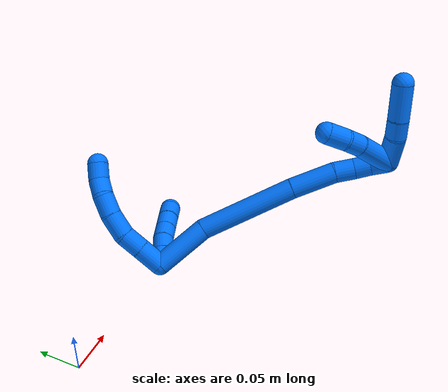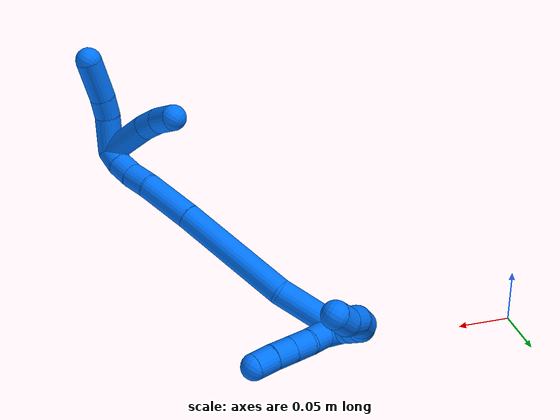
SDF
<sdf version="1.7">
 <world name="default">
  <model name="14">
   <static>0</static>
   <link name="14">
    <collision name="collision-cylinder-e_1_2_8">
     <pose>-0.010591 0.010419 -0.00333 -1.88014 -0.769293 1.01237</pose>
     <geometry><cylinder><radius>0.0125</radius><length>0.03045</length></cylinder></geometry>
     <surface>
      <friction><ode><mu>1.16</mu><mu2>1.16</mu2><slip1>0</slip1><slip2>0</slip2></ode></friction>
      <contact><ode><kp>1e+06</kp><kd>1</kd><max_vel>0</max_vel><min_depth>0.001</min_depth></ode></contact>
     </surface>
    </collision>
    <visual name="visual-cylinder-e_1_2_8">
     <pose>-0.010591 0.010419 -0.00333 -1.88014 -0.769293 1.01237</pose>
     <geometry><cylinder><radius>0.0125</radius><length>0.03045</length></cylinder></geometry>
     <material><ambient>0 0.462745 1 1</ambient></material>
    </visual>
    <collision name="collision-cylinder-e_2_8_9">
     <pose>-0.030024 0.029293 -0.009438 -1.88833 -0.782093 1.03533</pose>
     <geometry><cylinder><radius>0.0125</radius><length>0.025091</length></cylinder></geometry>
     <surface>
      <friction><ode><mu>1.16</mu><mu2>1.16</mu2><slip1>0</slip1><slip2>0</slip2></ode></friction>
      <contact><ode><kp>1e+06</kp><kd>1</kd><max_vel>0</max_vel><min_depth>0.001</min_depth></ode></contact>
     </surface>
    </collision>
    <visual name="visual-cylinder-e_2_8_9">
     <pose>-0.030024 0.029293 -0.009438 -1.88833 -0.782093 1.03533</pose>
     <geometry><cylinder><radius>0.0125</radius><length>0.025091</length></cylinder></geometry>
     <material><ambient>0 0.462745 1 1</ambient></material>
    </visual>
    <collision name="collision-cylinder-e_3_9_10">
     <pose>-0.048047 0.048391 -0.011154 -1.47123 -0.709357 0.646834</pose>
     <geometry><cylinder><radius>0.0125</radius><length>0.028193</length></cylinder></geometry>
     <surface>
      <friction><ode><mu>1.16</mu><mu2>1.16</mu2><slip1>0</slip1><slip2>0</slip2></ode></friction>
      <contact><ode><kp>1e+06</kp><kd>1</kd><max_vel>0</max_vel><min_depth>0.001</min_depth></ode></contact>
     </surface>
    </collision>
    <visual name="visual-cylinder-e_3_9_10">
     <pose>-0.048047 0.048391 -0.011154 -1.47123 -0.709357 0.646834</pose>
     <geometry><cylinder><radius>0.0125</radius><length>0.028193</length></cylinder></geometry>
     <material><ambient>0 0.462745 1 1</ambient></material>
    </visual>
    <collision name="collision-cylinder-e_4_10_11">
     <pose>-0.064435 0.068849 -0.006865 -1.25322 -0.60905 0.44745</pose>
     <geometry><cylinder><radius>0.0125</radius><length>0.025192</length></cylinder></geometry>
     <surface>
      <friction><ode><mu>1.16</mu><mu2>1.16</mu2><slip1>0</slip1><slip2>0</slip2></ode></friction>
      <contact><ode><kp>1e+06</kp><kd>1</kd><max_vel>0</max_vel><min_depth>0.001</min_depth></ode></contact>
     </surface>
    </collision>
    <visual name="visual-cylinder-e_4_10_11">
     <pose>-0.064435 0.068849 -0.006865 -1.25322 -0.60905 0.44745</pose>
     <geometry><cylinder><radius>0.0125</radius><length>0.025192</length></cylinder></geometry>
     <material><ambient>0 0.462745 1 1</ambient></material>
    </visual>
    <collision name="collision-cylinder-e_5_11_12">
     <pose>-0.07449 0.087988 -0.000216 -1.21897 -0.279301 0.195645</pose>
     <geometry><cylinder><radius>0.0125</radius><length>0.020666</length></cylinder></geometry>
     <surface>
      <friction><ode><mu>1.16</mu><mu2>1.16</mu2><slip1>0</slip1><slip2>0</slip2></ode></friction>
      <contact><ode><kp>1e+06</kp><kd>1</kd><max_vel>0</max_vel><min_depth>0.001</min_depth></ode></contact>
     </surface>
    </collision>
    <visual name="visual-cylinder-e_5_11_12">
     <pose>-0.07449 0.087988 -0.000216 -1.21897 -0.279301 0.195645</pose>
     <geometry><cylinder><radius>0.0125</radius><length>0.020666</length></cylinder></geometry>
     <material><ambient>0 0.462745 1 1</ambient></material>
    </visual>
    <collision name="collision-cylinder-e_6_12_6">
     <pose>-0.082106 0.104492 0.008669 -0.920522 -0.48618 0.24467</pose>
     <geometry><cylinder><radius>0.0125</radius><length>0.020407</length></cylinder></geometry>
     <surface>
      <friction><ode><mu>1.16</mu><mu2>1.16</mu2><slip1>0</slip1><slip2>0</slip2></ode></friction>
      <contact><ode><kp>1e+06</kp><kd>1</kd><max_vel>0</max_vel><min_depth>0.001</min_depth></ode></contact>
     </surface>
    </collision>
    <visual name="visual-cylinder-e_6_12_6">
     <pose>-0.082106 0.104492 0.008669 -0.920522 -0.48618 0.24467</pose>
     <geometry><cylinder><radius>0.0125</radius><length>0.020407</length></cylinder></geometry>
     <material><ambient>0 0.462745 1 1</ambient></material>
    </visual>
    <collision name="collision-cylinder-e_1_2_13">
     <pose>0.001828 0.00767 0.006151 -0.894827 0.183848 -0.088415</pose>
     <geometry><cylinder><radius>0.0125</radius><length>0.02</length></cylinder></geometry>
     <surface>
      <friction><ode><mu>1.16</mu><mu2>1.16</mu2><slip1>0</slip1><slip2>0</slip2></ode></friction>
      <contact><ode><kp>1e+06</kp><kd>1</kd><max_vel>0</max_vel><min_depth>0.001</min_depth></ode></contact>
     </surface>
    </collision>
    <visual name="visual-cylinder-e_1_2_13">
     <pose>0.001828 0.00767 0.006151 -0.894827 0.183848 -0.088415</pose>
     <geometry><cylinder><radius>0.0125</radius><length>0.02</length></cylinder></geometry>
     <material><ambient>0 0.462745 1 1</ambient></material>
    </visual>
    <collision name="collision-cylinder-e_2_13_14">
     <pose>0.004942 0.024448 0.016223 -1.16432 0.128976 -0.084966</pose>
     <geometry><cylinder><radius>0.0125</radius><length>0.02</length></cylinder></geometry>
     <surface>
      <friction><ode><mu>1.16</mu><mu2>1.16</mu2><slip1>0</slip1><slip2>0</slip2></ode></friction>
      <contact><ode><kp>1e+06</kp><kd>1</kd><max_vel>0</max_vel><min_depth>0.001</min_depth></ode></contact>
     </surface>
    </collision>
    <visual name="visual-cylinder-e_2_13_14">
     <pose>0.004942 0.024448 0.016223 -1.16432 0.128976 -0.084966</pose>
     <geometry><cylinder><radius>0.0125</radius><length>0.02</length></cylinder></geometry>
     <material><ambient>0 0.462745 1 1</ambient></material>
    </visual>
    <collision name="collision-cylinder-e_3_14_15">
     <pose>0.009079 0.041686 0.025223 -1.01231 0.289 -0.160974</pose>
     <geometry><cylinder><radius>0.0125</radius><length>0.02</length></cylinder></geometry>
     <surface>
      <friction><ode><mu>1.16</mu><mu2>1.16</mu2><slip1>0</slip1><slip2>0</slip2></ode></friction>
      <contact><ode><kp>1e+06</kp><kd>1</kd><max_vel>0</max_vel><min_depth>0.001</min_depth></ode></contact>
     </surface>
    </collision>
    <visual name="visual-cylinder-e_3_14_15">
     <pose>0.009079 0.041686 0.025223 -1.01231 0.289 -0.160974</pose>
     <geometry><cylinder><radius>0.0125</radius><length>0.02</length></cylinder></geometry>
     <material><ambient>0 0.462745 1 1</ambient></material>
    </visual>
    <collision name="collision-cylinder-e_4_15_16">
     <pose>0.014718 0.057936 0.035427 -1.00788 0.282691 -0.156609</pose>
     <geometry><cylinder><radius>0.0125</radius><length>0.02</length></cylinder></geometry>
     <surface>
      <friction><ode><mu>1.16</mu><mu2>1.16</mu2><slip1>0</slip1><slip2>0</slip2></ode></friction>
      <contact><ode><kp>1e+06</kp><kd>1</kd><max_vel>0</max_vel><min_depth>0.001</min_depth></ode></contact>
     </surface>
    </collision>
    <visual name="visual-cylinder-e_4_15_16">
     <pose>0.014718 0.057936 0.035427 -1.00788 0.282691 -0.156609</pose>
     <geometry><cylinder><radius>0.0125</radius><length>0.02</length></cylinder></geometry>
     <material><ambient>0 0.462745 1 1</ambient></material>
    </visual>
    <collision name="collision-cylinder-e_5_16_5">
     <pose>0.020919 0.074161 0.045316 -1.03937 0.348112 -0.200531</pose>
     <geometry><cylinder><radius>0.0125</radius><length>0.02</length></cylinder></geometry>
     <surface>
      <friction><ode><mu>1.16</mu><mu2>1.16</mu2><slip1>0</slip1><slip2>0</slip2></ode></friction>
      <contact><ode><kp>1e+06</kp><kd>1</kd><max_vel>0</max_vel><min_depth>0.001</min_depth></ode></contact>
     </surface>
    </collision>
    <visual name="visual-cylinder-e_5_16_5">
     <pose>0.020919 0.074161 0.045316 -1.03937 0.348112 -0.200531</pose>
     <geometry><cylinder><radius>0.0125</radius><length>0.02</length></cylinder></geometry>
     <material><ambient>0 0.462745 1 1</ambient></material>
    </visual>
    <collision name="collision-cylinder-e_1_2_17">
     <pose>-0.00103 0.000835 0.03343 -0.024969 -0.030798 0.000385</pose>
     <geometry><cylinder><radius>0.0125</radius><length>0.066913</length></cylinder></geometry>
     <surface>
      <friction><ode><mu>1.16</mu><mu2>1.16</mu2><slip1>0</slip1><slip2>0</slip2></ode></friction>
      <contact><ode><kp>1e+06</kp><kd>1</kd><max_vel>0</max_vel><min_depth>0.001</min_depth></ode></contact>
     </surface>
    </collision>
    <visual name="visual-cylinder-e_1_2_17">
     <pose>-0.00103 0.000835 0.03343 -0.024969 -0.030798 0.000385</pose>
     <geometry><cylinder><radius>0.0125</radius><length>0.066913</length></cylinder></geometry>
     <material><ambient>0 0.462745 1 1</ambient></material>
    </visual>
    <collision name="collision-cylinder-e_2_17_18">
     <pose>-0.000854 -0.013774 0.122941 0.268719 0.020734 0.002803</pose>
     <geometry><cylinder><radius>0.0125</radius><length>0.116362</length></cylinder></geometry>
     <surface>
      <friction><ode><mu>1.16</mu><mu2>1.16</mu2><slip1>0</slip1><slip2>0</slip2></ode></friction>
      <contact><ode><kp>1e+06</kp><kd>1</kd><max_vel>0</max_vel><min_depth>0.001</min_depth></ode></contact>
     </surface>
    </collision>
    <visual name="visual-cylinder-e_2_17_18">
     <pose>-0.000854 -0.013774 0.122941 0.268719 0.020734 0.002803</pose>
     <geometry><cylinder><radius>0.0125</radius><length>0.116362</length></cylinder></geometry>
     <material><ambient>0 0.462745 1 1</ambient></material>
    </visual>
    <collision name="collision-cylinder-e_3_18_19">
     <pose>0.002612 -0.037195 0.204238 0.306417 0.085244 0.013171</pose>
     <geometry><cylinder><radius>0.0125</radius><length>0.053089</length></cylinder></geometry>
     <surface>
      <friction><ode><mu>1.16</mu><mu2>1.16</mu2><slip1>0</slip1><slip2>0</slip2></ode></friction>
      <contact><ode><kp>1e+06</kp><kd>1</kd><max_vel>0</max_vel><min_depth>0.001</min_depth></ode></contact>
     </surface>
    </collision>
    <visual name="visual-cylinder-e_3_18_19">
     <pose>0.002612 -0.037195 0.204238 0.306417 0.085244 0.013171</pose>
     <geometry><cylinder><radius>0.0125</radius><length>0.053089</length></cylinder></geometry>
     <material><ambient>0 0.462745 1 1</ambient></material>
    </visual>
    <collision name="collision-cylinder-e_4_19_20">
     <pose>0.007569 -0.049756 0.239955 0.411543 0.231178 0.048459</pose>
     <geometry><cylinder><radius>0.0125</radius><length>0.02354</length></cylinder></geometry>
     <surface>
      <friction><ode><mu>1.16</mu><mu2>1.16</mu2><slip1>0</slip1><slip2>0</slip2></ode></friction>
      <contact><ode><kp>1e+06</kp><kd>1</kd><max_vel>0</max_vel><min_depth>0.001</min_depth></ode></contact>
     </surface>
    </collision>
    <visual name="visual-cylinder-e_4_19_20">
     <pose>0.007569 -0.049756 0.239955 0.411543 0.231178 0.048459</pose>
     <geometry><cylinder><radius>0.0125</radius><length>0.02354</length></cylinder></geometry>
     <material><ambient>0 0.462745 1 1</ambient></material>
    </visual>
    <collision name="collision-cylinder-e_5_20_21">
     <pose>0.011387 -0.058716 0.259405 0.454806 0.112019 0.025947</pose>
     <geometry><cylinder><radius>0.0125</radius><length>0.020052</length></cylinder></geometry>
     <surface>
      <friction><ode><mu>1.16</mu><mu2>1.16</mu2><slip1>0</slip1><slip2>0</slip2></ode></friction>
      <contact><ode><kp>1e+06</kp><kd>1</kd><max_vel>0</max_vel><min_depth>0.001</min_depth></ode></contact>
     </surface>
    </collision>
    <visual name="visual-cylinder-e_5_20_21">
     <pose>0.011387 -0.058716 0.259405 0.454806 0.112019 0.025947</pose>
     <geometry><cylinder><radius>0.0125</radius><length>0.020052</length></cylinder></geometry>
     <material><ambient>0 0.462745 1 1</ambient></material>
    </visual>
    <collision name="collision-cylinder-e_6_21_1">
     <pose>0.012517 -0.068822 0.276579 0.608518 0.000922 0.000289</pose>
     <geometry><cylinder><radius>0.0125</radius><length>0.020044</length></cylinder></geometry>
     <surface>
      <friction><ode><mu>1.16</mu><mu2>1.16</mu2><slip1>0</slip1><slip2>0</slip2></ode></friction>
      <contact><ode><kp>1e+06</kp><kd>1</kd><max_vel>0</max_vel><min_depth>0.001</min_depth></ode></contact>
     </surface>
    </collision>
    <visual name="visual-cylinder-e_6_21_1">
     <pose>0.012517 -0.068822 0.276579 0.608518 0.000922 0.000289</pose>
     <geometry><cylinder><radius>0.0125</radius><length>0.020044</length></cylinder></geometry>
     <material><ambient>0 0.462745 1 1</ambient></material>
    </visual>
    <collision name="collision-cylinder-e_1_1_22">
     <pose>-0.003677 -0.075347 0.293819 0.088077 -1.06132 -0.051706</pose>
     <geometry><cylinder><radius>0.0125</radius><length>0.03712</length></cylinder></geometry>
     <surface>
      <friction><ode><mu>1.16</mu><mu2>1.16</mu2><slip1>0</slip1><slip2>0</slip2></ode></friction>
      <contact><ode><kp>1e+06</kp><kd>1</kd><max_vel>0</max_vel><min_depth>0.001</min_depth></ode></contact>
     </surface>
    </collision>
    <visual name="visual-cylinder-e_1_1_22">
     <pose>-0.003677 -0.075347 0.293819 0.088077 -1.06132 -0.051706</pose>
     <geometry><cylinder><radius>0.0125</radius><length>0.03712</length></cylinder></geometry>
     <material><ambient>0 0.462745 1 1</ambient></material>
    </visual>
    <collision name="collision-cylinder-e_2_22_23">
     <pose>-0.028677 -0.074254 0.308337 -0.330846 -0.986614 0.179038</pose>
     <geometry><cylinder><radius>0.0125</radius><length>0.021091</length></cylinder></geometry>
     <surface>
      <friction><ode><mu>1.16</mu><mu2>1.16</mu2><slip1>0</slip1><slip2>0</slip2></ode></friction>
      <contact><ode><kp>1e+06</kp><kd>1</kd><max_vel>0</max_vel><min_depth>0.001</min_depth></ode></contact>
     </surface>
    </collision>
    <visual name="visual-cylinder-e_2_22_23">
     <pose>-0.028677 -0.074254 0.308337 -0.330846 -0.986614 0.179038</pose>
     <geometry><cylinder><radius>0.0125</radius><length>0.021091</length></cylinder></geometry>
     <material><ambient>0 0.462745 1 1</ambient></material>
    </visual>
    <collision name="collision-cylinder-e_3_23_4">
     <pose>-0.054045 -0.066983 0.325369 -0.436663 -0.915908 0.217853</pose>
     <geometry><cylinder><radius>0.0125</radius><length>0.041789</length></cylinder></geometry>
     <surface>
      <friction><ode><mu>1.16</mu><mu2>1.16</mu2><slip1>0</slip1><slip2>0</slip2></ode></friction>
      <contact><ode><kp>1e+06</kp><kd>1</kd><max_vel>0</max_vel><min_depth>0.001</min_depth></ode></contact>
     </surface>
    </collision>
    <visual name="visual-cylinder-e_3_23_4">
     <pose>-0.054045 -0.066983 0.325369 -0.436663 -0.915908 0.217853</pose>
     <geometry><cylinder><radius>0.0125</radius><length>0.041789</length></cylinder></geometry>
     <material><ambient>0 0.462745 1 1</ambient></material>
    </visual>
    <collision name="collision-cylinder-e_1_1_24">
     <pose>-0.011963 -0.070528 0.273421 -2.80177 -1.11284 2.6033</pose>
     <geometry><cylinder><radius>0.0125</radius><length>0.054605</length></cylinder></geometry>
     <surface>
      <friction><ode><mu>1.16</mu><mu2>1.16</mu2><slip1>0</slip1><slip2>0</slip2></ode></friction>
      <contact><ode><kp>1e+06</kp><kd>1</kd><max_vel>0</max_vel><min_depth>0.001</min_depth></ode></contact>
     </surface>
    </collision>
    <visual name="visual-cylinder-e_1_1_24">
     <pose>-0.011963 -0.070528 0.273421 -2.80177 -1.11284 2.6033</pose>
     <geometry><cylinder><radius>0.0125</radius><length>0.054605</length></cylinder></geometry>
     <material><ambient>0 0.462745 1 1</ambient></material>
    </visual>
    <collision name="collision-cylinder-e_2_24_25">
     <pose>-0.045005 -0.064152 0.256725 -2.725 -0.973902 2.38198</pose>
     <geometry><cylinder><radius>0.0125</radius><length>0.020682</length></cylinder></geometry>
     <surface>
      <friction><ode><mu>1.16</mu><mu2>1.16</mu2><slip1>0</slip1><slip2>0</slip2></ode></friction>
      <contact><ode><kp>1e+06</kp><kd>1</kd><max_vel>0</max_vel><min_depth>0.001</min_depth></ode></contact>
     </surface>
    </collision>
    <visual name="visual-cylinder-e_2_24_25">
     <pose>-0.045005 -0.064152 0.256725 -2.725 -0.973902 2.38198</pose>
     <geometry><cylinder><radius>0.0125</radius><length>0.020682</length></cylinder></geometry>
     <material><ambient>0 0.462745 1 1</ambient></material>
    </visual>
    <collision name="collision-cylinder-e_3_25_3">
     <pose>-0.062288 -0.056579 0.244394 -2.50187 -0.784482 1.79125</pose>
     <geometry><cylinder><radius>0.0125</radius><length>0.024713</length></cylinder></geometry>
     <surface>
      <friction><ode><mu>1.16</mu><mu2>1.16</mu2><slip1>0</slip1><slip2>0</slip2></ode></friction>
      <contact><ode><kp>1e+06</kp><kd>1</kd><max_vel>0</max_vel><min_depth>0.001</min_depth></ode></contact>
     </surface>
    </collision>
    <visual name="visual-cylinder-e_3_25_3">
     <pose>-0.062288 -0.056579 0.244394 -2.50187 -0.784482 1.79125</pose>
     <geometry><cylinder><radius>0.0125</radius><length>0.024713</length></cylinder></geometry>
     <material><ambient>0 0.462745 1 1</ambient></material>
    </visual>
    <collision name="collision-sphere-3">
     <pose>-0.071017 -0.051359 0.237378 0 -0 0</pose>
     <geometry><sphere><radius>0.0125</radius></sphere></geometry>
     <surface>
      <friction><ode><mu>1.16</mu><mu2>1.16</mu2><slip1>0</slip1><slip2>0</slip2></ode></friction>
      <contact><ode><kp>1e+06</kp><kd>1</kd><max_vel>0</max_vel><min_depth>0.001</min_depth></ode></contact>
     </surface>
    </collision>
    <visual name="visual-sphere-3">
     <pose>-0.071017 -0.051359 0.237378 0 -0 0</pose>
     <geometry><sphere><radius>0.0125</radius></sphere></geometry>
     <material><ambient>0 0.462745 1 1</ambient></material>
    </visual>
    <collision name="collision-sphere-25">
     <pose>-0.053558 -0.0618 0.25141 0 -0 0</pose>
     <geometry><sphere><radius>0.0125</radius></sphere></geometry>
     <surface>
      <friction><ode><mu>1.16</mu><mu2>1.16</mu2><slip1>0</slip1><slip2>0</slip2></ode></friction>
      <contact><ode><kp>1e+06</kp><kd>1</kd><max_vel>0</max_vel><min_depth>0.001</min_depth></ode></contact>
     </surface>
    </collision>
    <visual name="visual-sphere-25">
     <pose>-0.053558 -0.0618 0.25141 0 -0 0</pose>
     <geometry><sphere><radius>0.0125</radius></sphere></geometry>
     <material><ambient>0 0.462745 1 1</ambient></material>
    </visual>
    <collision name="collision-sphere-24">
     <pose>-0.036452 -0.066504 0.262041 0 -0 0</pose>
     <geometry><sphere><radius>0.0125</radius></sphere></geometry>
     <surface>
      <friction><ode><mu>1.16</mu><mu2>1.16</mu2><slip1>0</slip1><slip2>0</slip2></ode></friction>
      <contact><ode><kp>1e+06</kp><kd>1</kd><max_vel>0</max_vel><min_depth>0.001</min_depth></ode></contact>
     </surface>
    </collision>
    <visual name="visual-sphere-24">
     <pose>-0.036452 -0.066504 0.262041 0 -0 0</pose>
     <geometry><sphere><radius>0.0125</radius></sphere></geometry>
     <material><ambient>0 0.462745 1 1</ambient></material>
    </visual>
    <collision name="collision-sphere-4">
     <pose>-0.070617 -0.061601 0.336901 0 -0 0</pose>
     <geometry><sphere><radius>0.0125</radius></sphere></geometry>
     <surface>
      <friction><ode><mu>1.16</mu><mu2>1.16</mu2><slip1>0</slip1><slip2>0</slip2></ode></friction>
      <contact><ode><kp>1e+06</kp><kd>1</kd><max_vel>0</max_vel><min_depth>0.001</min_depth></ode></contact>
     </surface>
    </collision>
    <visual name="visual-sphere-4">
     <pose>-0.070617 -0.061601 0.336901 0 -0 0</pose>
     <geometry><sphere><radius>0.0125</radius></sphere></geometry>
     <material><ambient>0 0.462745 1 1</ambient></material>
    </visual>
    <collision name="collision-sphere-23">
     <pose>-0.037474 -0.072365 0.313837 0 -0 0</pose>
     <geometry><sphere><radius>0.0125</radius></sphere></geometry>
     <surface>
      <friction><ode><mu>1.16</mu><mu2>1.16</mu2><slip1>0</slip1><slip2>0</slip2></ode></friction>
      <contact><ode><kp>1e+06</kp><kd>1</kd><max_vel>0</max_vel><min_depth>0.001</min_depth></ode></contact>
     </surface>
    </collision>
    <visual name="visual-sphere-23">
     <pose>-0.037474 -0.072365 0.313837 0 -0 0</pose>
     <geometry><sphere><radius>0.0125</radius></sphere></geometry>
     <material><ambient>0 0.462745 1 1</ambient></material>
    </visual>
    <collision name="collision-sphere-22">
     <pose>-0.01988 -0.076143 0.302836 0 -0 0</pose>
     <geometry><sphere><radius>0.0125</radius></sphere></geometry>
     <surface>
      <friction><ode><mu>1.16</mu><mu2>1.16</mu2><slip1>0</slip1><slip2>0</slip2></ode></friction>
      <contact><ode><kp>1e+06</kp><kd>1</kd><max_vel>0</max_vel><min_depth>0.001</min_depth></ode></contact>
     </surface>
    </collision>
    <visual name="visual-sphere-22">
     <pose>-0.01988 -0.076143 0.302836 0 -0 0</pose>
     <geometry><sphere><radius>0.0125</radius></sphere></geometry>
     <material><ambient>0 0.462745 1 1</ambient></material>
    </visual>
    <collision name="collision-sphere-1">
     <pose>0.012526 -0.074551 0.284802 0 -0 0</pose>
     <geometry><sphere><radius>0.0125</radius></sphere></geometry>
     <surface>
      <friction><ode><mu>1.16</mu><mu2>1.16</mu2><slip1>0</slip1><slip2>0</slip2></ode></friction>
      <contact><ode><kp>1e+06</kp><kd>1</kd><max_vel>0</max_vel><min_depth>0.001</min_depth></ode></contact>
     </surface>
    </collision>
    <visual name="visual-sphere-1">
     <pose>0.012526 -0.074551 0.284802 0 -0 0</pose>
     <geometry><sphere><radius>0.0125</radius></sphere></geometry>
     <material><ambient>0 0.462745 1 1</ambient></material>
    </visual>
    <collision name="collision-sphere-21">
     <pose>0.012507 -0.063093 0.268356 0 -0 0</pose>
     <geometry><sphere><radius>0.0125</radius></sphere></geometry>
     <surface>
      <friction><ode><mu>1.16</mu><mu2>1.16</mu2><slip1>0</slip1><slip2>0</slip2></ode></friction>
      <contact><ode><kp>1e+06</kp><kd>1</kd><max_vel>0</max_vel><min_depth>0.001</min_depth></ode></contact>
     </surface>
    </collision>
    <visual name="visual-sphere-21">
     <pose>0.012507 -0.063093 0.268356 0 -0 0</pose>
     <geometry><sphere><radius>0.0125</radius></sphere></geometry>
     <material><ambient>0 0.462745 1 1</ambient></material>
    </visual>
    <collision name="collision-sphere-12">
     <pose>-0.077338 0.097312 0.003207 0 -0 0</pose>
     <geometry><sphere><radius>0.0125</radius></sphere></geometry>
     <surface>
      <friction><ode><mu>1.16</mu><mu2>1.16</mu2><slip1>0</slip1><slip2>0</slip2></ode></friction>
      <contact><ode><kp>1e+06</kp><kd>1</kd><max_vel>0</max_vel><min_depth>0.001</min_depth></ode></contact>
     </surface>
    </collision>
    <visual name="visual-sphere-12">
     <pose>-0.077338 0.097312 0.003207 0 -0 0</pose>
     <geometry><sphere><radius>0.0125</radius></sphere></geometry>
     <material><ambient>0 0.462745 1 1</ambient></material>
    </visual>
    <collision name="collision-sphere-11">
     <pose>-0.071641 0.078664 -0.003639 0 -0 0</pose>
     <geometry><sphere><radius>0.0125</radius></sphere></geometry>
     <surface>
      <friction><ode><mu>1.16</mu><mu2>1.16</mu2><slip1>0</slip1><slip2>0</slip2></ode></friction>
      <contact><ode><kp>1e+06</kp><kd>1</kd><max_vel>0</max_vel><min_depth>0.001</min_depth></ode></contact>
     </surface>
    </collision>
    <visual name="visual-sphere-11">
     <pose>-0.071641 0.078664 -0.003639 0 -0 0</pose>
     <geometry><sphere><radius>0.0125</radius></sphere></geometry>
     <material><ambient>0 0.462745 1 1</ambient></material>
    </visual>
    <collision name="collision-sphere-10">
     <pose>-0.057229 0.059034 -0.010091 0 -0 0</pose>
     <geometry><sphere><radius>0.0125</radius></sphere></geometry>
     <surface>
      <friction><ode><mu>1.16</mu><mu2>1.16</mu2><slip1>0</slip1><slip2>0</slip2></ode></friction>
      <contact><ode><kp>1e+06</kp><kd>1</kd><max_vel>0</max_vel><min_depth>0.001</min_depth></ode></contact>
     </surface>
    </collision>
    <visual name="visual-sphere-10">
     <pose>-0.057229 0.059034 -0.010091 0 -0 0</pose>
     <geometry><sphere><radius>0.0125</radius></sphere></geometry>
     <material><ambient>0 0.462745 1 1</ambient></material>
    </visual>
    <collision name="collision-sphere-9">
     <pose>-0.038866 0.037748 -0.012217 0 -0 0</pose>
     <geometry><sphere><radius>0.0125</radius></sphere></geometry>
     <surface>
      <friction><ode><mu>1.16</mu><mu2>1.16</mu2><slip1>0</slip1><slip2>0</slip2></ode></friction>
      <contact><ode><kp>1e+06</kp><kd>1</kd><max_vel>0</max_vel><min_depth>0.001</min_depth></ode></contact>
     </surface>
    </collision>
    <visual name="visual-sphere-9">
     <pose>-0.038866 0.037748 -0.012217 0 -0 0</pose>
     <geometry><sphere><radius>0.0125</radius></sphere></geometry>
     <material><ambient>0 0.462745 1 1</ambient></material>
    </visual>
    <collision name="collision-sphere-2">
     <geometry><sphere><radius>0.0125</radius></sphere></geometry>
     <surface>
      <friction><ode><mu>1.16</mu><mu2>1.16</mu2><slip1>0</slip1><slip2>0</slip2></ode></friction>
      <contact><ode><kp>1e+06</kp><kd>1</kd><max_vel>0</max_vel><min_depth>0.001</min_depth></ode></contact>
     </surface>
    </collision>
    <visual name="visual-sphere-2">
     <geometry><sphere><radius>0.0125</radius></sphere></geometry>
     <material><ambient>0 0.462745 1 1</ambient></material>
    </visual>
    <collision name="collision-sphere-19">
     <pose>0.004872 -0.045173 0.229454 0 -0 0</pose>
     <geometry><sphere><radius>0.0125</radius></sphere></geometry>
     <surface>
      <friction><ode><mu>1.16</mu><mu2>1.16</mu2><slip1>0</slip1><slip2>0</slip2></ode></friction>
      <contact><ode><kp>1e+06</kp><kd>1</kd><max_vel>0</max_vel><min_depth>0.001</min_depth></ode></contact>
     </surface>
    </collision>
    <visual name="visual-sphere-19">
     <pose>0.004872 -0.045173 0.229454 0 -0 0</pose>
     <geometry><sphere><radius>0.0125</radius></sphere></geometry>
     <material><ambient>0 0.462745 1 1</ambient></material>
    </visual>
    <collision name="collision-sphere-8">
     <pose>-0.021182 0.020837 -0.00666 0 -0 0</pose>
     <geometry><sphere><radius>0.0125</radius></sphere></geometry>
     <surface>
      <friction><ode><mu>1.16</mu><mu2>1.16</mu2><slip1>0</slip1><slip2>0</slip2></ode></friction>
      <contact><ode><kp>1e+06</kp><kd>1</kd><max_vel>0</max_vel><min_depth>0.001</min_depth></ode></contact>
     </surface>
    </collision>
    <visual name="visual-sphere-8">
     <pose>-0.021182 0.020837 -0.00666 0 -0 0</pose>
     <geometry><sphere><radius>0.0125</radius></sphere></geometry>
     <material><ambient>0 0.462745 1 1</ambient></material>
    </visual>
    <collision name="collision-sphere-6">
     <pose>-0.086874 0.111672 0.01413 0 -0 0</pose>
     <geometry><sphere><radius>0.0125</radius></sphere></geometry>
     <surface>
      <friction><ode><mu>1.16</mu><mu2>1.16</mu2><slip1>0</slip1><slip2>0</slip2></ode></friction>
      <contact><ode><kp>1e+06</kp><kd>1</kd><max_vel>0</max_vel><min_depth>0.001</min_depth></ode></contact>
     </surface>
    </collision>
    <visual name="visual-sphere-6">
     <pose>-0.086874 0.111672 0.01413 0 -0 0</pose>
     <geometry><sphere><radius>0.0125</radius></sphere></geometry>
     <material><ambient>0 0.462745 1 1</ambient></material>
    </visual>
    <collision name="collision-sphere-13">
     <pose>0.003656 0.015339 0.012302 0 -0 0</pose>
     <geometry><sphere><radius>0.0125</radius></sphere></geometry>
     <surface>
      <friction><ode><mu>1.16</mu><mu2>1.16</mu2><slip1>0</slip1><slip2>0</slip2></ode></friction>
      <contact><ode><kp>1e+06</kp><kd>1</kd><max_vel>0</max_vel><min_depth>0.001</min_depth></ode></contact>
     </surface>
    </collision>
    <visual name="visual-sphere-13">
     <pose>0.003656 0.015339 0.012302 0 -0 0</pose>
     <geometry><sphere><radius>0.0125</radius></sphere></geometry>
     <material><ambient>0 0.462745 1 1</ambient></material>
    </visual>
    <collision name="collision-sphere-14">
     <pose>0.006229 0.033557 0.020144 0 -0 0</pose>
     <geometry><sphere><radius>0.0125</radius></sphere></geometry>
     <surface>
      <friction><ode><mu>1.16</mu><mu2>1.16</mu2><slip1>0</slip1><slip2>0</slip2></ode></friction>
      <contact><ode><kp>1e+06</kp><kd>1</kd><max_vel>0</max_vel><min_depth>0.001</min_depth></ode></contact>
     </surface>
    </collision>
    <visual name="visual-sphere-14">
     <pose>0.006229 0.033557 0.020144 0 -0 0</pose>
     <geometry><sphere><radius>0.0125</radius></sphere></geometry>
     <material><ambient>0 0.462745 1 1</ambient></material>
    </visual>
    <collision name="collision-sphere-15">
     <pose>0.011929 0.049815 0.030303 0 -0 0</pose>
     <geometry><sphere><radius>0.0125</radius></sphere></geometry>
     <surface>
      <friction><ode><mu>1.16</mu><mu2>1.16</mu2><slip1>0</slip1><slip2>0</slip2></ode></friction>
      <contact><ode><kp>1e+06</kp><kd>1</kd><max_vel>0</max_vel><min_depth>0.001</min_depth></ode></contact>
     </surface>
    </collision>
    <visual name="visual-sphere-15">
     <pose>0.011929 0.049815 0.030303 0 -0 0</pose>
     <geometry><sphere><radius>0.0125</radius></sphere></geometry>
     <material><ambient>0 0.462745 1 1</ambient></material>
    </visual>
    <collision name="collision-sphere-16">
     <pose>0.017507 0.066057 0.040552 0 -0 0</pose>
     <geometry><sphere><radius>0.0125</radius></sphere></geometry>
     <surface>
      <friction><ode><mu>1.16</mu><mu2>1.16</mu2><slip1>0</slip1><slip2>0</slip2></ode></friction>
      <contact><ode><kp>1e+06</kp><kd>1</kd><max_vel>0</max_vel><min_depth>0.001</min_depth></ode></contact>
     </surface>
    </collision>
    <visual name="visual-sphere-16">
     <pose>0.017507 0.066057 0.040552 0 -0 0</pose>
     <geometry><sphere><radius>0.0125</radius></sphere></geometry>
     <material><ambient>0 0.462745 1 1</ambient></material>
    </visual>
    <collision name="collision-sphere-5">
     <pose>0.02433 0.082265 0.05008 0 -0 0</pose>
     <geometry><sphere><radius>0.0125</radius></sphere></geometry>
     <surface>
      <friction><ode><mu>1.16</mu><mu2>1.16</mu2><slip1>0</slip1><slip2>0</slip2></ode></friction>
      <contact><ode><kp>1e+06</kp><kd>1</kd><max_vel>0</max_vel><min_depth>0.001</min_depth></ode></contact>
     </surface>
    </collision>
    <visual name="visual-sphere-5">
     <pose>0.02433 0.082265 0.05008 0 -0 0</pose>
     <geometry><sphere><radius>0.0125</radius></sphere></geometry>
     <material><ambient>0 0.462745 1 1</ambient></material>
    </visual>
    <collision name="collision-sphere-17">
     <pose>-0.00206 0.00167 0.06686 0 -0 0</pose>
     <geometry><sphere><radius>0.0125</radius></sphere></geometry>
     <surface>
      <friction><ode><mu>1.16</mu><mu2>1.16</mu2><slip1>0</slip1><slip2>0</slip2></ode></friction>
      <contact><ode><kp>1e+06</kp><kd>1</kd><max_vel>0</max_vel><min_depth>0.001</min_depth></ode></contact>
     </surface>
    </collision>
    <visual name="visual-sphere-17">
     <pose>-0.00206 0.00167 0.06686 0 -0 0</pose>
     <geometry><sphere><radius>0.0125</radius></sphere></geometry>
     <material><ambient>0 0.462745 1 1</ambient></material>
    </visual>
    <collision name="collision-sphere-18">
     <pose>0.000352 -0.029217 0.179022 0 -0 0</pose>
     <geometry><sphere><radius>0.0125</radius></sphere></geometry>
     <surface>
      <friction><ode><mu>1.16</mu><mu2>1.16</mu2><slip1>0</slip1><slip2>0</slip2></ode></friction>
      <contact><ode><kp>1e+06</kp><kd>1</kd><max_vel>0</max_vel><min_depth>0.001</min_depth></ode></contact>
     </surface>
    </collision>
    <visual name="visual-sphere-18">
     <pose>0.000352 -0.029217 0.179022 0 -0 0</pose>
     <geometry><sphere><radius>0.0125</radius></sphere></geometry>
     <material><ambient>0 0.462745 1 1</ambient></material>
    </visual>
    <collision name="collision-sphere-20">
     <pose>0.010266 -0.054339 0.250455 0 -0 0</pose>
     <geometry><sphere><radius>0.0125</radius></sphere></geometry>
     <surface>
      <friction><ode><mu>1.16</mu><mu2>1.16</mu2><slip1>0</slip1><slip2>0</slip2></ode></friction>
      <contact><ode><kp>1e+06</kp><kd>1</kd><max_vel>0</max_vel><min_depth>0.001</min_depth></ode></contact>
     </surface>
    </collision>
    <visual name="visual-sphere-20">
     <pose>0.010266 -0.054339 0.250455 0 -0 0</pose>
     <geometry><sphere><radius>0.0125</radius></sphere></geometry>
     <material><ambient>0 0.462745 1 1</ambient></material>
    </visual>
    <inertial>
     <pose>-0.015646 -0.011691 0.137305 0 -0 0</pose>
     <mass>0.75</mass>
     <inertia><ixx>0.000195</ixx><ixy>0</ixy><ixz>0</ixz><iyy>0.000245</iyy><iyz>0</iyz><izz>8e-05</izz></inertia>
    </inertial>
   </link>
   <pose>0.164147 -0.00874 0.012502 0.116384 1.12665 -0.497211</pose>
  </model>
 </world>
</sdf>
